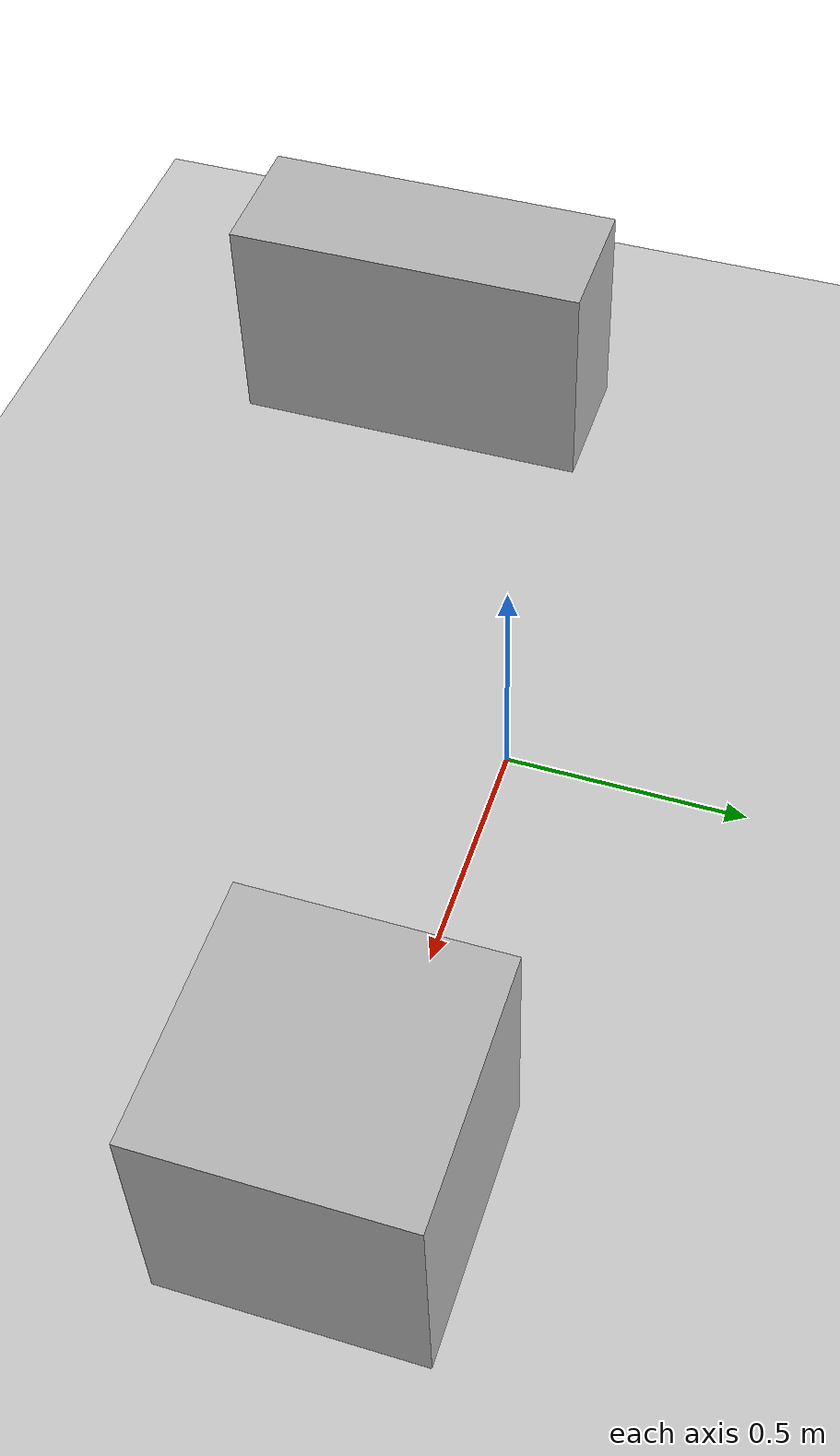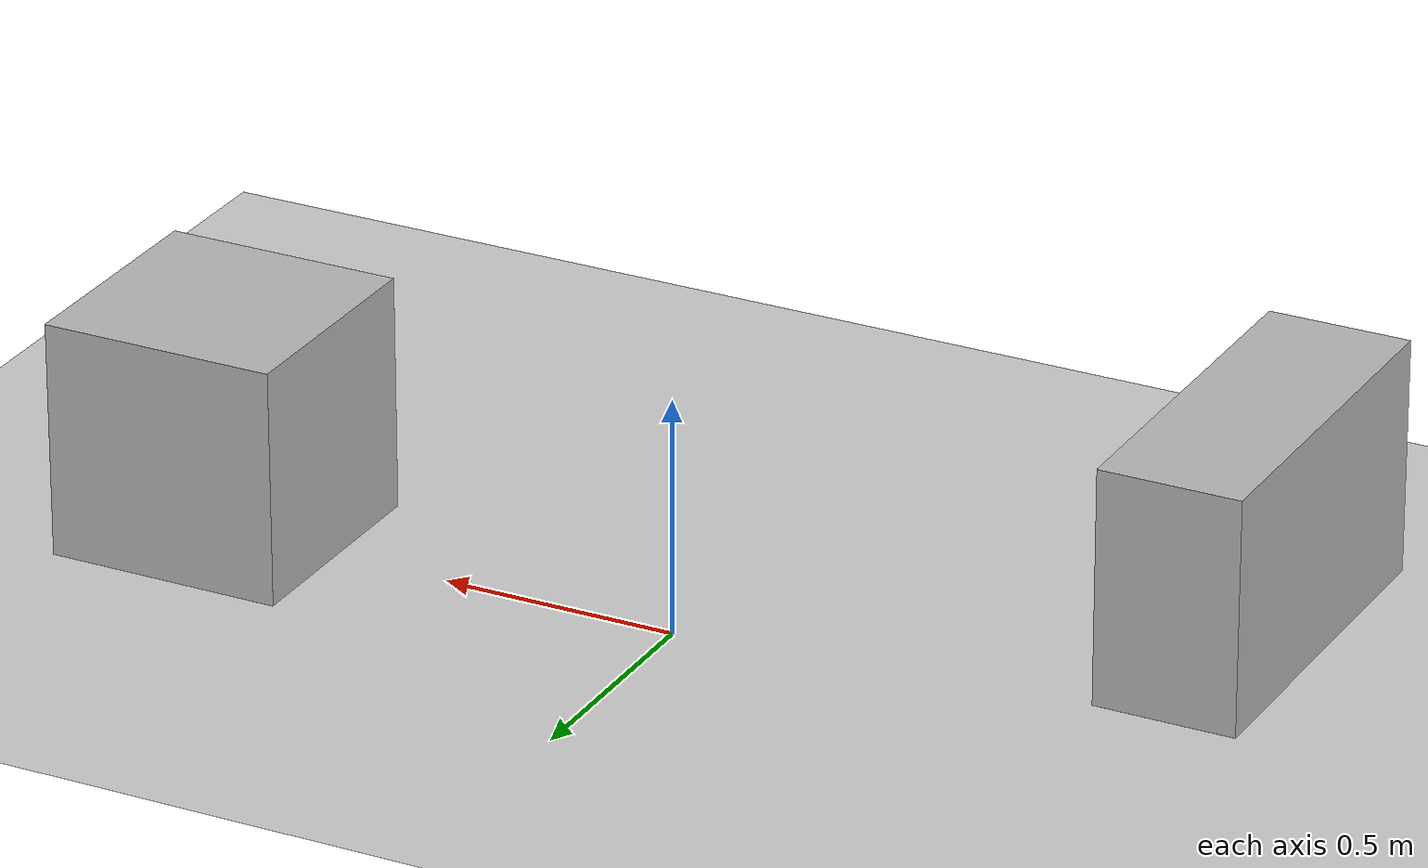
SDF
<?xml version="1.0" ?>
<sdf version="1.7">
  <world name="tb3_world">
    <plugin filename="gz-sim-physics-system" name="gz::sim::systems::Physics"/>
    <plugin filename="gz-sim-user-commands-system" name="gz::sim::systems::UserCommands"/>
    <plugin filename="gz-sim-scene-broadcaster-system" name="gz::sim::systems::SceneBroadcaster"/>
    <plugin filename="gz-sim-sensors-system" name="gz::sim::systems::Sensors">
      <render_engine>ogre2</render_engine>
    </plugin>
    <physics type="ignition">
      <max_step_size>0.001</max_step_size>
      <real_time_factor>1.0</real_time_factor>
    </physics>
    <include>
      <uri>https://fuel.gazebosim.org/1.0/OpenRobotics/models/Sun</uri>
    </include>
    <include>
      <uri>https://fuel.gazebosim.org/1.0/OpenRobotics/models/Ground Plane</uri>
    </include>
    <model name="box1">
      <static>true</static>
      <pose>1 0 0.25 0 0 0</pose>
      <link name="link">
        <collision name="collision">
          <geometry>
            <box>
              <size>0.5 0.5 0.5</size>
            </box>
          </geometry>
        </collision>
        <visual name="visual">
          <geometry>
            <box>
              <size>0.5 0.5 0.5</size>
            </box>
          </geometry>
        </visual>
      </link>
    </model>
    <model name="box2">
      <static>true</static>
      <pose>-1 -0.5 0.25 0 0 0</pose>
      <link name="link">
        <collision name="collision">
          <geometry>
            <box>
              <size>0.3 0.8 0.5</size>
            </box>
          </geometry>
        </collision>
        <visual name="visual">
          <geometry>
            <box>
              <size>0.3 0.8 0.5</size>
            </box>
          </geometry>
        </visual>
      </link>
    </model>
  </world>
</sdf>
